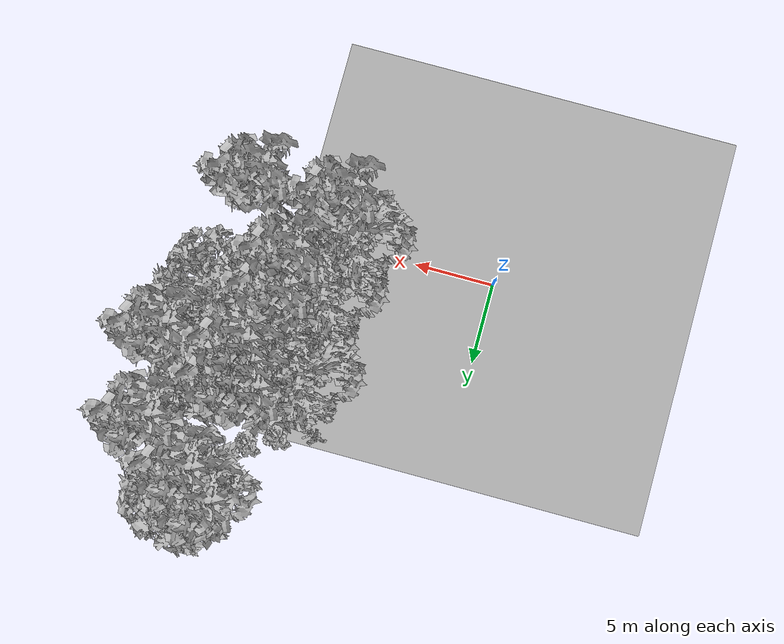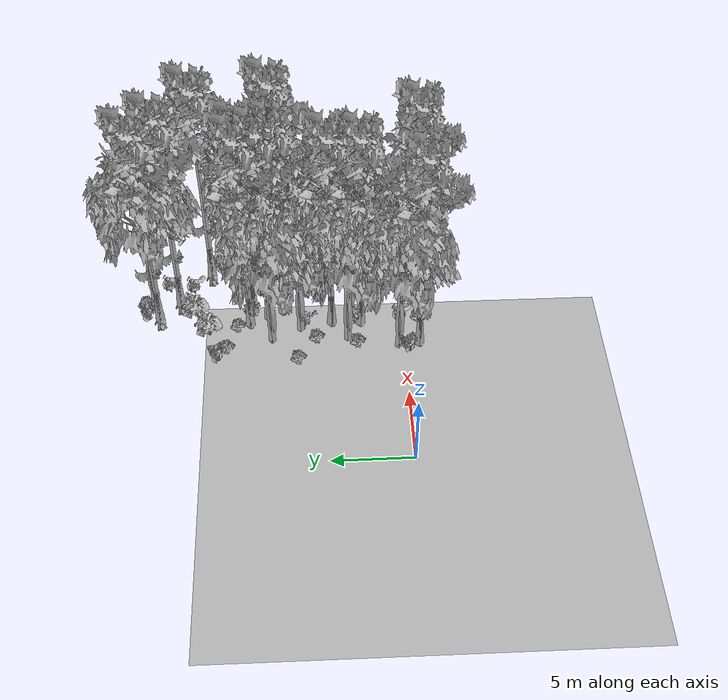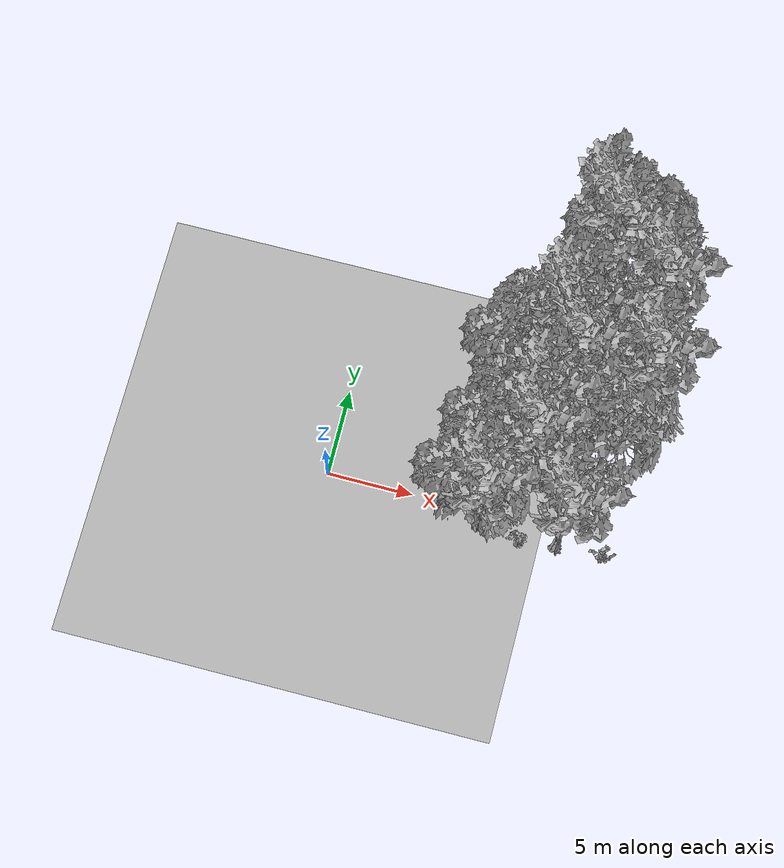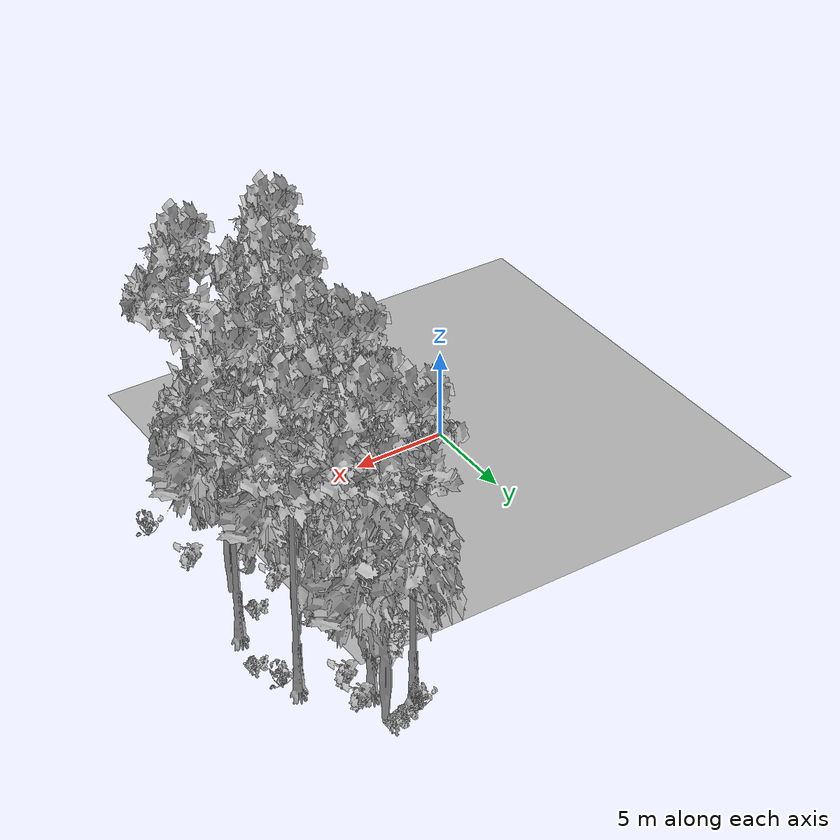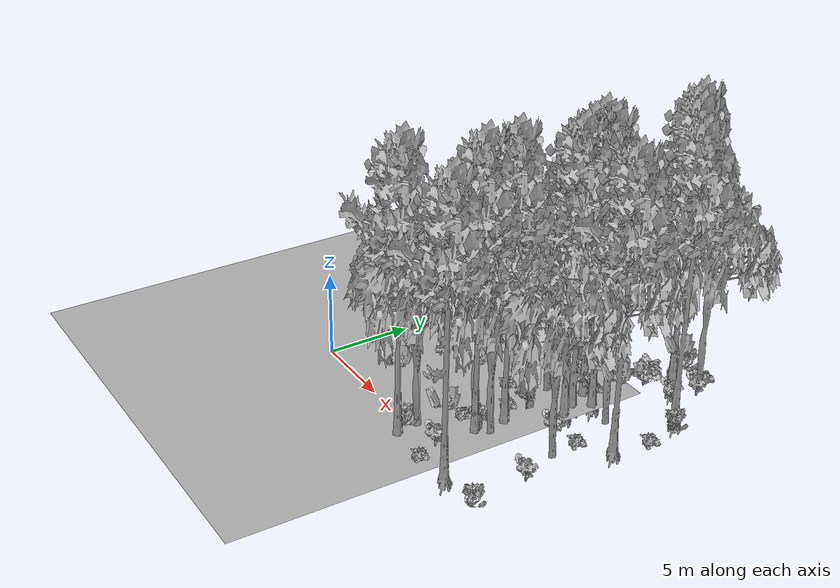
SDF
<sdf version="1.7">
 <world name="default">
  <model name="ground_plane">
   <static>1</static>
   <link name="link">
    <collision name="collision">
     <pose>-50 0 0 0 -0 0</pose>
     <geometry><plane><normal>0 0 1</normal><size>80 80</size></plane></geometry>
     <surface><contact><ode><min_depth>0.01</min_depth><max_vel>0</max_vel></ode></contact></surface>
    </collision>
    <visual name="grass">
     <cast_shadows>0</cast_shadows>
     <geometry>
      <mesh>
       <scale>0.46714285714285714 0.46714285714285714 0.1</scale>
       <uri>file://grass_plane/meshes/grass_plane.dae</uri>
      </mesh>
     </geometry>
    </visual>
   </link>
  </model>
  <model name="Tree 30">
   <static>1</static>
   <pose>10.430734319268318 6.563693035591072 0 1.57079 -0 0</pose>
   <link name="link">
    <collision name="collision">
     <geometry><mesh><scale>3.5 5 3.5</scale><uri>model://tree_2/meshes/tree_2.obj</uri></mesh></geometry>
    </collision>
    <visual name="visual">
     <geometry><mesh><scale>3.5 5 3.5</scale><uri>model://tree_2/meshes/tree_2.obj</uri></mesh></geometry>
    </visual>
   </link>
  </model>
  <model name="Tree 105">
   <static>1</static>
   <pose>10.9786424306903 4.581191035782297 0 1.57079 -0 0</pose>
   <link name="link">
    <collision name="collision">
     <geometry><mesh><scale>3.5 5 3.5</scale><uri>model://tree_9/meshes/tree_9.obj</uri></mesh></geometry>
    </collision>
    <visual name="visual">
     <geometry><mesh><scale>3.5 5 3.5</scale><uri>model://tree_9/meshes/tree_9.obj</uri></mesh></geometry>
    </visual>
   </link>
  </model>
  <model name="Tree 109">
   <static>1</static>
   <pose>8.742514447326108 0.3862678013299643 0 1.57079 -0 0</pose>
   <link name="link">
    <collision name="collision">
     <geometry><mesh><scale>3.5 5 3.5</scale><uri>model://tree_2/meshes/tree_2.obj</uri></mesh></geometry>
    </collision>
    <visual name="visual">
     <geometry><mesh><scale>3.5 5 3.5</scale><uri>model://tree_2/meshes/tree_2.obj</uri></mesh></geometry>
    </visual>
   </link>
  </model>
  <model name="Tree 145">
   <static>1</static>
   <pose>13.748248483414471 9.161627262118529 0 1.57079 -0 0</pose>
   <link name="link">
    <collision name="collision">
     <geometry><mesh><scale>3.5 5 3.5</scale><uri>model://tree_2/meshes/tree_2.obj</uri></mesh></geometry>
    </collision>
    <visual name="visual">
     <geometry><mesh><scale>3.5 5 3.5</scale><uri>model://tree_2/meshes/tree_2.obj</uri></mesh></geometry>
    </visual>
   </link>
  </model>
  <model name="Tree 200">
   <static>1</static>
   <pose>13.389131598865902 16.05763120767125 0 1.57079 -0 0</pose>
   <link name="link">
    <collision name="collision">
     <geometry><mesh><scale>3.5 5 3.5</scale><uri>model://tree_2/meshes/tree_2.obj</uri></mesh></geometry>
    </collision>
    <visual name="visual">
     <geometry><mesh><scale>3.5 5 3.5</scale><uri>model://tree_2/meshes/tree_2.obj</uri></mesh></geometry>
    </visual>
   </link>
  </model>
  <model name="Tree 210">
   <static>1</static>
   <pose>11.755380584759472 15.625270973498644 0 1.57079 -0 0</pose>
   <link name="link">
    <collision name="collision">
     <geometry><mesh><scale>3.5 5 3.5</scale><uri>model://tree_9/meshes/tree_9.obj</uri></mesh></geometry>
    </collision>
    <visual name="visual">
     <geometry><mesh><scale>3.5 5 3.5</scale><uri>model://tree_9/meshes/tree_9.obj</uri></mesh></geometry>
    </visual>
   </link>
  </model>
  <model name="Tree 215">
   <static>1</static>
   <pose>9.507686477557705 8.36453205875241 0 1.57079 -0 0</pose>
   <link name="link">
    <collision name="collision">
     <geometry><mesh><scale>3.5 5 3.5</scale><uri>model://tree_2/meshes/tree_2.obj</uri></mesh></geometry>
    </collision>
    <visual name="visual">
     <geometry><mesh><scale>3.5 5 3.5</scale><uri>model://tree_2/meshes/tree_2.obj</uri></mesh></geometry>
    </visual>
   </link>
  </model>
  <model name="Tree 254">
   <static>1</static>
   <pose>14.78032192779542 4.902846008636075 0 1.57079 -0 0</pose>
   <link name="link">
    <collision name="collision">
     <geometry><mesh><scale>3.5 5 3.5</scale><uri>model://tree_2/meshes/tree_2.obj</uri></mesh></geometry>
    </collision>
    <visual name="visual">
     <geometry><mesh><scale>3.5 5 3.5</scale><uri>model://tree_2/meshes/tree_2.obj</uri></mesh></geometry>
    </visual>
   </link>
  </model>
  <model name="Tree 315">
   <static>1</static>
   <pose>9.504244685083677 3.583420001274 0 1.57079 -0 0</pose>
   <link name="link">
    <collision name="collision">
     <geometry><mesh><scale>3.5 5 3.5</scale><uri>model://tree_2/meshes/tree_2.obj</uri></mesh></geometry>
    </collision>
    <visual name="visual">
     <geometry><mesh><scale>3.5 5 3.5</scale><uri>model://tree_2/meshes/tree_2.obj</uri></mesh></geometry>
    </visual>
   </link>
  </model>
  <model name="Tree 323">
   <static>1</static>
   <pose>15.673650997560962 12.420354260861963 0 1.57079 -0 0</pose>
   <link name="link">
    <collision name="collision">
     <geometry><mesh><scale>3.5 5 3.5</scale><uri>model://tree_9/meshes/tree_9.obj</uri></mesh></geometry>
    </collision>
    <visual name="visual">
     <geometry><mesh><scale>3.5 5 3.5</scale><uri>model://tree_9/meshes/tree_9.obj</uri></mesh></geometry>
    </visual>
   </link>
  </model>
  <model name="Tree 324">
   <static>1</static>
   <pose>11.028444965121302 9.803256272862683 0 1.57079 -0 0</pose>
   <link name="link">
    <collision name="collision">
     <geometry><mesh><scale>3.5 5 3.5</scale><uri>model://tree_9/meshes/tree_9.obj</uri></mesh></geometry>
    </collision>
    <visual name="visual">
     <geometry><mesh><scale>3.5 5 3.5</scale><uri>model://tree_9/meshes/tree_9.obj</uri></mesh></geometry>
    </visual>
   </link>
  </model>
  <model name="Tree 334">
   <static>1</static>
   <pose>12.15792995881884 9.5664901656368 0 1.57079 -0 0</pose>
   <link name="link">
    <collision name="collision">
     <geometry><mesh><scale>3.5 5 3.5</scale><uri>model://tree_9/meshes/tree_9.obj</uri></mesh></geometry>
    </collision>
    <visual name="visual">
     <geometry><mesh><scale>3.5 5 3.5</scale><uri>model://tree_9/meshes/tree_9.obj</uri></mesh></geometry>
    </visual>
   </link>
  </model>
  <model name="Tree 335">
   <static>1</static>
   <pose>9.0087703258448 -0.9108198992077661 0 1.57079 -0 0</pose>
   <link name="link">
    <collision name="collision">
     <geometry><mesh><scale>3.5 5 3.5</scale><uri>model://tree_9/meshes/tree_9.obj</uri></mesh></geometry>
    </collision>
    <visual name="visual">
     <geometry><mesh><scale>3.5 5 3.5</scale><uri>model://tree_9/meshes/tree_9.obj</uri></mesh></geometry>
    </visual>
   </link>
  </model>
  <model name="Tree 359">
   <static>1</static>
   <pose>16.11506074366355 7.930831454826979 0 1.57079 -0 0</pose>
   <link name="link">
    <collision name="collision">
     <geometry><mesh><scale>3.5 5 3.5</scale><uri>model://tree_9/meshes/tree_9.obj</uri></mesh></geometry>
    </collision>
    <visual name="visual">
     <geometry><mesh><scale>3.5 5 3.5</scale><uri>model://tree_9/meshes/tree_9.obj</uri></mesh></geometry>
    </visual>
   </link>
  </model>
  <model name="Tree 460">
   <static>1</static>
   <pose>12.130157994689696 7.707621775453205 0 1.57079 -0 0</pose>
   <link name="link">
    <collision name="collision">
     <geometry><mesh><scale>3.5 5 3.5</scale><uri>model://tree_9/meshes/tree_9.obj</uri></mesh></geometry>
    </collision>
    <visual name="visual">
     <geometry><mesh><scale>3.5 5 3.5</scale><uri>model://tree_9/meshes/tree_9.obj</uri></mesh></geometry>
    </visual>
   </link>
  </model>
  <model name="Tree 498">
   <static>1</static>
   <pose>11.617025578598813 8.612290778312051 0 1.57079 -0 0</pose>
   <link name="link">
    <collision name="collision">
     <geometry><mesh><scale>3.5 5 3.5</scale><uri>model://tree_9/meshes/tree_9.obj</uri></mesh></geometry>
    </collision>
    <visual name="visual">
     <geometry><mesh><scale>3.5 5 3.5</scale><uri>model://tree_9/meshes/tree_9.obj</uri></mesh></geometry>
    </visual>
   </link>
  </model>
  <model name="Tree 508">
   <static>1</static>
   <pose>13.578063095608073 -0.8913911029868231 0 1.57079 -0 0</pose>
   <link name="link">
    <collision name="collision">
     <geometry><mesh><scale>3.5 5 3.5</scale><uri>model://tree_9/meshes/tree_9.obj</uri></mesh></geometry>
    </collision>
    <visual name="visual">
     <geometry><mesh><scale>3.5 5 3.5</scale><uri>model://tree_9/meshes/tree_9.obj</uri></mesh></geometry>
    </visual>
   </link>
  </model>
  <model name="Tree 530">
   <static>1</static>
   <pose>13.116158294878957 14.351436273361962 0 1.57079 -0 0</pose>
   <link name="link">
    <collision name="collision">
     <geometry><mesh><scale>3.5 5 3.5</scale><uri>model://tree_9/meshes/tree_9.obj</uri></mesh></geometry>
    </collision>
    <visual name="visual">
     <geometry><mesh><scale>3.5 5 3.5</scale><uri>model://tree_9/meshes/tree_9.obj</uri></mesh></geometry>
    </visual>
   </link>
  </model>
  <model name="Tree 578">
   <static>1</static>
   <pose>10.913606972969937 2.7277615298833595 0 1.57079 -0 0</pose>
   <link name="link">
    <collision name="collision">
     <geometry><mesh><scale>3.5 5 3.5</scale><uri>model://tree_9/meshes/tree_9.obj</uri></mesh></geometry>
    </collision>
    <visual name="visual">
     <geometry><mesh><scale>3.5 5 3.5</scale><uri>model://tree_9/meshes/tree_9.obj</uri></mesh></geometry>
    </visual>
   </link>
  </model>
  <model name="Tree 580">
   <static>1</static>
   <pose>11.33999588172341 3.3520583722996236 0 1.57079 -0 0</pose>
   <link name="link">
    <collision name="collision">
     <geometry><mesh><scale>3.5 5 3.5</scale><uri>model://tree_2/meshes/tree_2.obj</uri></mesh></geometry>
    </collision>
    <visual name="visual">
     <geometry><mesh><scale>3.5 5 3.5</scale><uri>model://tree_2/meshes/tree_2.obj</uri></mesh></geometry>
    </visual>
   </link>
  </model>
  <model name="Bush 33">
   <static>1</static>
   <pose>12.00490140419673 13.24334440599003 0 1.57079 -0 0</pose>
   <link name="link">
    <collision name="collision">
     <geometry><mesh><scale>2 2 2</scale><uri>model://bush_1/meshes/bush_1.obj</uri></mesh></geometry>
     <surface><contact><collide_without_contact>false</collide_without_contact></contact></surface>
    </collision>
    <visual name="visual">
     <geometry><mesh><scale>2 2 2</scale><uri>model://bush_1/meshes/bush_1.obj</uri></mesh></geometry>
    </visual>
   </link>
  </model>
  <model name="Bush 52">
   <static>1</static>
   <pose>11.89039806258043 16.376261956707943 0 1.57079 -0 0</pose>
   <link name="link">
    <collision name="collision">
     <geometry><mesh><scale>2 2 2</scale><uri>model://bush_4/meshes/bush_4.obj</uri></mesh></geometry>
     <surface><contact><collide_without_contact>false</collide_without_contact></contact></surface>
    </collision>
    <visual name="visual">
     <geometry><mesh><scale>2 2 2</scale><uri>model://bush_4/meshes/bush_4.obj</uri></mesh></geometry>
    </visual>
   </link>
  </model>
  <model name="Bush 108">
   <static>1</static>
   <pose>10.962693837138225 0.23719483029195487 0 1.57079 -0 0</pose>
   <link name="link">
    <collision name="collision">
     <geometry><mesh><scale>2 2 2</scale><uri>model://bush_0/meshes/bush_0.obj</uri></mesh></geometry>
     <surface><contact><collide_without_contact>false</collide_without_contact></contact></surface>
    </collision>
    <visual name="visual">
     <geometry><mesh><scale>2 2 2</scale><uri>model://bush_0/meshes/bush_0.obj</uri></mesh></geometry>
    </visual>
   </link>
  </model>
  <model name="Bush 215">
   <static>1</static>
   <pose>11.360537928318827 -1.0034951867736268 0 1.57079 -0 0</pose>
   <link name="link">
    <collision name="collision">
     <geometry><mesh><scale>2 2 2</scale><uri>model://bush_2/meshes/bush_2.obj</uri></mesh></geometry>
     <surface><contact><collide_without_contact>false</collide_without_contact></contact></surface>
    </collision>
    <visual name="visual">
     <geometry><mesh><scale>2 2 2</scale><uri>model://bush_2/meshes/bush_2.obj</uri></mesh></geometry>
    </visual>
   </link>
  </model>
  <model name="Bush 224">
   <static>1</static>
   <pose>9.34886507246992 2.967718063389512 0 1.57079 -0 0</pose>
   <link name="link">
    <collision name="collision">
     <geometry><mesh><scale>2 2 2</scale><uri>model://bush_2/meshes/bush_2.obj</uri></mesh></geometry>
     <surface><contact><collide_without_contact>false</collide_without_contact></contact></surface>
    </collision>
    <visual name="visual">
     <geometry><mesh><scale>2 2 2</scale><uri>model://bush_2/meshes/bush_2.obj</uri></mesh></geometry>
    </visual>
   </link>
  </model>
  <model name="Bush 236">
   <static>1</static>
   <pose>12.59993305673796 16.39458487279886 0 1.57079 -0 0</pose>
   <link name="link">
    <collision name="collision">
     <geometry><mesh><scale>2 2 2</scale><uri>model://bush_2/meshes/bush_2.obj</uri></mesh></geometry>
     <surface><contact><collide_without_contact>false</collide_without_contact></contact></surface>
    </collision>
    <visual name="visual">
     <geometry><mesh><scale>2 2 2</scale><uri>model://bush_2/meshes/bush_2.obj</uri></mesh></geometry>
    </visual>
   </link>
  </model>
  <model name="Bush 256">
   <static>1</static>
   <pose>8.089703332237306 6.747528548347205 0 1.57079 -0 0</pose>
   <link name="link">
    <collision name="collision">
     <geometry><mesh><scale>2 2 2</scale><uri>model://bush_2/meshes/bush_2.obj</uri></mesh></geometry>
     <surface><contact><collide_without_contact>false</collide_without_contact></contact></surface>
    </collision>
    <visual name="visual">
     <geometry><mesh><scale>2 2 2</scale><uri>model://bush_2/meshes/bush_2.obj</uri></mesh></geometry>
    </visual>
   </link>
  </model>
  <model name="Bush 343">
   <static>1</static>
   <pose>10.62251674612962 6.312020325793391 0 1.57079 -0 0</pose>
   <link name="link">
    <collision name="collision">
     <geometry><mesh><scale>2 2 2</scale><uri>model://bush_5/meshes/bush_5.obj</uri></mesh></geometry>
     <surface><contact><collide_without_contact>false</collide_without_contact></contact></surface>
    </collision>
    <visual name="visual">
     <geometry><mesh><scale>2 2 2</scale><uri>model://bush_5/meshes/bush_5.obj</uri></mesh></geometry>
    </visual>
   </link>
  </model>
  <model name="Bush 344">
   <static>1</static>
   <pose>16.472820163948256 10.081804062222517 0 1.57079 -0 0</pose>
   <link name="link">
    <collision name="collision">
     <geometry><mesh><scale>2 2 2</scale><uri>model://bush_2/meshes/bush_2.obj</uri></mesh></geometry>
     <surface><contact><collide_without_contact>false</collide_without_contact></contact></surface>
    </collision>
    <visual name="visual">
     <geometry><mesh><scale>2 2 2</scale><uri>model://bush_2/meshes/bush_2.obj</uri></mesh></geometry>
    </visual>
   </link>
  </model>
  <model name="Bush 368">
   <static>1</static>
   <pose>8.145598594841942 11.837996183167014 0 1.57079 -0 0</pose>
   <link name="link">
    <collision name="collision">
     <geometry><mesh><scale>2 2 2</scale><uri>model://bush_4/meshes/bush_4.obj</uri></mesh></geometry>
     <surface><contact><collide_without_contact>false</collide_without_contact></contact></surface>
    </collision>
    <visual name="visual">
     <geometry><mesh><scale>2 2 2</scale><uri>model://bush_4/meshes/bush_4.obj</uri></mesh></geometry>
    </visual>
   </link>
  </model>
  <model name="Bush 401">
   <static>1</static>
   <pose>16.201384151792993 -0.9470575279587123 0 1.57079 -0 0</pose>
   <link name="link">
    <collision name="collision">
     <geometry><mesh><scale>2 2 2</scale><uri>model://bush_4/meshes/bush_4.obj</uri></mesh></geometry>
     <surface><contact><collide_without_contact>false</collide_without_contact></contact></surface>
    </collision>
    <visual name="visual">
     <geometry><mesh><scale>2 2 2</scale><uri>model://bush_4/meshes/bush_4.obj</uri></mesh></geometry>
    </visual>
   </link>
  </model>
  <model name="Bush 455">
   <static>1</static>
   <pose>10.340949183221284 12.355866868948944 0 1.57079 -0 0</pose>
   <link name="link">
    <collision name="collision">
     <geometry><mesh><scale>2 2 2</scale><uri>model://bush_1/meshes/bush_1.obj</uri></mesh></geometry>
     <surface><contact><collide_without_contact>false</collide_without_contact></contact></surface>
    </collision>
    <visual name="visual">
     <geometry><mesh><scale>2 2 2</scale><uri>model://bush_1/meshes/bush_1.obj</uri></mesh></geometry>
    </visual>
   </link>
  </model>
  <model name="Bush 464">
   <static>1</static>
   <pose>13.33637284283548 6.076786714389371 0 1.57079 -0 0</pose>
   <link name="link">
    <collision name="collision">
     <geometry><mesh><scale>2 2 2</scale><uri>model://bush_0/meshes/bush_0.obj</uri></mesh></geometry>
     <surface><contact><collide_without_contact>false</collide_without_contact></contact></surface>
    </collision>
    <visual name="visual">
     <geometry><mesh><scale>2 2 2</scale><uri>model://bush_0/meshes/bush_0.obj</uri></mesh></geometry>
    </visual>
   </link>
  </model>
  <model name="Bush 470">
   <static>1</static>
   <pose>14.103154643906265 13.505836752918356 0 1.57079 -0 0</pose>
   <link name="link">
    <collision name="collision">
     <geometry><mesh><scale>2 2 2</scale><uri>model://bush_0/meshes/bush_0.obj</uri></mesh></geometry>
     <surface><contact><collide_without_contact>false</collide_without_contact></contact></surface>
    </collision>
    <visual name="visual">
     <geometry><mesh><scale>2 2 2</scale><uri>model://bush_0/meshes/bush_0.obj</uri></mesh></geometry>
    </visual>
   </link>
  </model>
  <model name="Bush 490">
   <static>1</static>
   <pose>10.982422288143404 10.581566896194886 0 1.57079 -0 0</pose>
   <link name="link">
    <collision name="collision">
     <geometry><mesh><scale>2 2 2</scale><uri>model://bush_2/meshes/bush_2.obj</uri></mesh></geometry>
     <surface><contact><collide_without_contact>false</collide_without_contact></contact></surface>
    </collision>
    <visual name="visual">
     <geometry><mesh><scale>2 2 2</scale><uri>model://bush_2/meshes/bush_2.obj</uri></mesh></geometry>
    </visual>
   </link>
  </model>
  <model name="Bush 503">
   <static>1</static>
   <pose>16.204955210699318 11.84653205142073 0 1.57079 -0 0</pose>
   <link name="link">
    <collision name="collision">
     <geometry><mesh><scale>2 2 2</scale><uri>model://bush_4/meshes/bush_4.obj</uri></mesh></geometry>
     <surface><contact><collide_without_contact>false</collide_without_contact></contact></surface>
    </collision>
    <visual name="visual">
     <geometry><mesh><scale>2 2 2</scale><uri>model://bush_4/meshes/bush_4.obj</uri></mesh></geometry>
    </visual>
   </link>
  </model>
  <model name="Bush 519">
   <static>1</static>
   <pose>13.278662479214312 16.6138317119009 0 1.57079 -0 0</pose>
   <link name="link">
    <collision name="collision">
     <geometry><mesh><scale>2 2 2</scale><uri>model://bush_2/meshes/bush_2.obj</uri></mesh></geometry>
     <surface><contact><collide_without_contact>false</collide_without_contact></contact></surface>
    </collision>
    <visual name="visual">
     <geometry><mesh><scale>2 2 2</scale><uri>model://bush_2/meshes/bush_2.obj</uri></mesh></geometry>
    </visual>
   </link>
  </model>
  <model name="Bush 532">
   <static>1</static>
   <pose>15.906778454952828 2.5519610819081677 0 1.57079 -0 0</pose>
   <link name="link">
    <collision name="collision">
     <geometry><mesh><scale>2 2 2</scale><uri>model://bush_0/meshes/bush_0.obj</uri></mesh></geometry>
     <surface><contact><collide_without_contact>false</collide_without_contact></contact></surface>
    </collision>
    <visual name="visual">
     <geometry><mesh><scale>2 2 2</scale><uri>model://bush_0/meshes/bush_0.obj</uri></mesh></geometry>
    </visual>
   </link>
  </model>
  <model name="Bush 568">
   <static>1</static>
   <pose>8.450481188511702 -0.23006195030011156 0 1.57079 -0 0</pose>
   <link name="link">
    <collision name="collision">
     <geometry><mesh><scale>2 2 2</scale><uri>model://bush_4/meshes/bush_4.obj</uri></mesh></geometry>
     <surface><contact><collide_without_contact>false</collide_without_contact></contact></surface>
    </collision>
    <visual name="visual">
     <geometry><mesh><scale>2 2 2</scale><uri>model://bush_4/meshes/bush_4.obj</uri></mesh></geometry>
    </visual>
   </link>
  </model>
  <model name="Bush 573">
   <static>1</static>
   <pose>14.339566390592182 15.109335955367193 0 1.57079 -0 0</pose>
   <link name="link">
    <collision name="collision">
     <geometry><mesh><scale>2 2 2</scale><uri>model://bush_0/meshes/bush_0.obj</uri></mesh></geometry>
     <surface><contact><collide_without_contact>false</collide_without_contact></contact></surface>
    </collision>
    <visual name="visual">
     <geometry><mesh><scale>2 2 2</scale><uri>model://bush_0/meshes/bush_0.obj</uri></mesh></geometry>
    </visual>
   </link>
  </model>
  <model name="Bush 592">
   <static>1</static>
   <pose>14.54529306444983 6.7122523658894195 0 1.57079 -0 0</pose>
   <link name="link">
    <collision name="collision">
     <geometry><mesh><scale>2 2 2</scale><uri>model://bush_2/meshes/bush_2.obj</uri></mesh></geometry>
     <surface><contact><collide_without_contact>false</collide_without_contact></contact></surface>
    </collision>
    <visual name="visual">
     <geometry><mesh><scale>2 2 2</scale><uri>model://bush_2/meshes/bush_2.obj</uri></mesh></geometry>
    </visual>
   </link>
  </model>
  <model name="Bush 609">
   <static>1</static>
   <pose>9.142690213842961 11.27672892630219 0 1.57079 -0 0</pose>
   <link name="link">
    <collision name="collision">
     <geometry><mesh><scale>2 2 2</scale><uri>model://bush_2/meshes/bush_2.obj</uri></mesh></geometry>
     <surface><contact><collide_without_contact>false</collide_without_contact></contact></surface>
    </collision>
    <visual name="visual">
     <geometry><mesh><scale>2 2 2</scale><uri>model://bush_2/meshes/bush_2.obj</uri></mesh></geometry>
    </visual>
   </link>
  </model>
  <model name="Bush 611">
   <static>1</static>
   <pose>10.907415045491582 3.154850594462893 0 1.57079 -0 0</pose>
   <link name="link">
    <collision name="collision">
     <geometry><mesh><scale>2 2 2</scale><uri>model://bush_5/meshes/bush_5.obj</uri></mesh></geometry>
     <surface><contact><collide_without_contact>false</collide_without_contact></contact></surface>
    </collision>
    <visual name="visual">
     <geometry><mesh><scale>2 2 2</scale><uri>model://bush_5/meshes/bush_5.obj</uri></mesh></geometry>
    </visual>
   </link>
  </model>
  <model name="Bush 625">
   <static>1</static>
   <pose>9.834293080685462 5.56140440205165 0 1.57079 -0 0</pose>
   <link name="link">
    <collision name="collision">
     <geometry><mesh><scale>2 2 2</scale><uri>model://bush_2/meshes/bush_2.obj</uri></mesh></geometry>
     <surface><contact><collide_without_contact>false</collide_without_contact></contact></surface>
    </collision>
    <visual name="visual">
     <geometry><mesh><scale>2 2 2</scale><uri>model://bush_2/meshes/bush_2.obj</uri></mesh></geometry>
    </visual>
   </link>
  </model>
  <model name="Bush 630">
   <static>1</static>
   <pose>11.465146383714583 9.898040173382448 0 1.57079 -0 0</pose>
   <link name="link">
    <collision name="collision">
     <geometry><mesh><scale>2 2 2</scale><uri>model://bush_5/meshes/bush_5.obj</uri></mesh></geometry>
     <surface><contact><collide_without_contact>false</collide_without_contact></contact></surface>
    </collision>
    <visual name="visual">
     <geometry><mesh><scale>2 2 2</scale><uri>model://bush_5/meshes/bush_5.obj</uri></mesh></geometry>
    </visual>
   </link>
  </model>
 </world>
</sdf>
